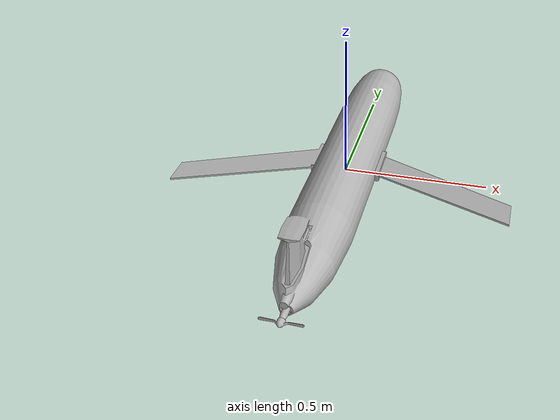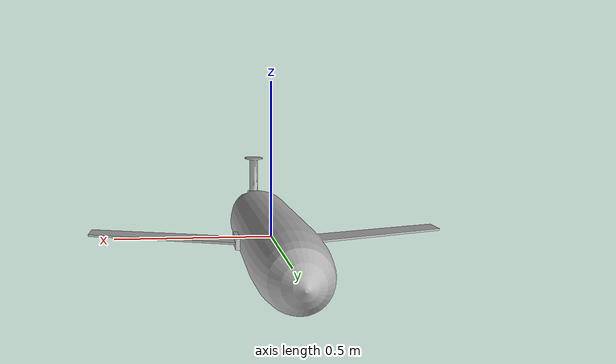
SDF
<?xml version="1.0"?>
<sdf version="1.7">
  <model name="glider_nautilus">

    <static>false</static>
    <link name="base_link">
      <inertial>
        <pose>0 0 -3 0 0 0</pose>
        <mass>69.25</mass>
        <inertia>
          <ixx>13.193856</ixx>
          <ixy>0</ixy>
          <ixz>0</ixz>
          <iyy>0.418962</iyy>
          <iyz>0</iyz>
          <izz>13.193856</izz>
        </inertia>
      </inertial>

      <visual name="base_link_visual">
        <pose>0 0 0 0 0 0</pose>
        <geometry>
          <mesh>
            <scale>0.5 0.5 0.5</scale>
            <uri>model://meshes/glider_nautilus/Nautilus-Glider.dae</uri>
          </mesh>
        </geometry>
      </visual>

      <collision name="base_link_collision">
        <pose>0 0 0 0 0 0</pose>
        <geometry>
          <box>
            <size>0.22 1.5 0.22</size>
          </box>
        </geometry>
      </collision>
    </link>

    <link name="propeller_link">
      <visual name="propeller_link_visual">
        <pose>0 0 0 0 0 0</pose>
        <geometry>
          <mesh>
            <scale>0.5 0.5 0.5</scale>
            <uri>model://meshes/glider_nautilus/Nautilus-Glider-Propeller.dae</uri>
          </mesh>
        </geometry>
      </visual>
      <inertial>
        <pose>0 0 0 0 0 0</pose>
        <inertia>
          <ixx>0.1</ixx>
          <ixy>0</ixy>
          <ixz>0</ixz>
          <iyy>0.1</iyy>
          <iyz>0</iyz>
          <izz>0.1</izz>
        </inertia>
        <mass>0.5</mass>
      </inertial>
    </link>

    <joint name="propeller_joint" type="revolute">
      <pose>0 0 0 0 0 0</pose>
      <parent>base_link</parent>
      <child>propeller_link</child>
      <axis>
        <xyz>0 1 0</xyz>
      </axis>
    </joint>

    <link name="LeftFin_link">
      <visual name="LeftFin_link_visual">
        <pose>0 0 0 0 0 0</pose>
        <geometry>
          <mesh>
            <scale>0.5 0.5 0.5</scale>
            <uri>model://meshes/glider_nautilus/Nautilus-Glider-LeftFin.dae</uri>
          </mesh>
        </geometry>
      </visual>

      <inertial>
        <pose>0 0 0 0 0 0</pose>
      </inertial>
    </link>

    <joint name="LeftFin_joint" type="revolute">
      <pose>0 0 0 0 0 0</pose>
      <parent>base_link</parent>
      <child>LeftFin_link</child>
      <axis>
        <xyz>1 0 0</xyz>
      </axis>
    </joint>

    <plugin
      filename="gz-sim-joint-position-controller-system"
      name="gz::sim::systems::JointPositionController">
      <joint_name>LeftFin_joint</joint_name>
      <p_gain>0.1</p_gain>
    </plugin>

    <plugin
      filename="gz-sim-lift-drag-system"
      name="gz::sim::systems::LiftDrag">
      <air_density>1025</air_density>
      <cla>4.13</cla>
      <cla_stall>-1.1</cla_stall>
      <cda>0.2</cda>
      <cda_stall>0.03</cda_stall>
      <alpha_stall>0.17</alpha_stall>
      <a0>0</a0>
      <area>0.0244</area>
      <upward>0 0 1</upward>
      <forward>1 0 0</forward>
      <link_name>LeftFin_link</link_name>
      <cp>0 0 0</cp>
    </plugin>

    <link name="RightFin_link">
      <visual name="RightFin_link_visual">
        <pose>0 0 0 0 0 0</pose>
        <geometry>
          <mesh>
            <scale>0.5 0.5 0.5</scale>
            <uri>model://meshes/glider_nautilus/Nautilus-Glider-RightFin.dae</uri>
          </mesh>
        </geometry>
      </visual>

      <inertial>
        <pose>0 0 0 0 0 0</pose>
      </inertial>
    </link>

    <joint name="RightFin_joint" type="revolute">
      <pose>0 0 0 0 0 0</pose>
      <parent>base_link</parent>
      <child>RightFin_link</child>
      <axis>
        <xyz>1 0 0</xyz>
      </axis>
    </joint>

    <plugin
      filename="gz-sim-joint-position-controller-system"
      name="gz::sim::systems::JointPositionController">
      <joint_name>RightFin_joint</joint_name>
      <p_gain>0.1</p_gain>
    </plugin>

    <plugin
      filename="gz-sim-lift-drag-system"
      name="gz::sim::systems::LiftDrag">
      <air_density>1025</air_density>
      <cla>4.13</cla>
      <cla_stall>-1.1</cla_stall>
      <cda>0.2</cda>
      <cda_stall>0.03</cda_stall>
      <alpha_stall>0.17</alpha_stall>
      <a0>0</a0>
      <area>0.0244</area>
      <upward>0 0 1</upward>
      <forward>1 0 0</forward>
      <link_name>RightFin_link</link_name>
      <cp>0 0 0</cp>
    </plugin>

    <link name="TopRudder_link">
      <visual name="TopRudder_link_visual">
        <pose>0 0 0 0 0 0</pose>
        <geometry>
          <mesh>
            <scale>0.5 0.5 0.5</scale>
            <uri>model://meshes/glider_nautilus/Nautilus-Glider-TopRudder.dae</uri>
          </mesh>
        </geometry>
      </visual>

      <inertial>
        <pose>0 0 0 0 0 0</pose>
      </inertial>
    </link>

    <joint name="TopRudder_joint" type="revolute">
      <pose>0 0 0 0 0 0</pose>
      <parent>base_link</parent>
      <child>TopRudder_link</child>
      <axis>
        <xyz>0 0 1</xyz>
      </axis>
    </joint>

    <plugin
      filename="gz-sim-joint-position-controller-system"
      name="gz::sim::systems::JointPositionController">
      <joint_name>TopRudder_joint</joint_name>
      <p_gain>0.1</p_gain>
    </plugin>

    <plugin
      filename="gz-sim-lift-drag-system"
      name="gz::sim::systems::LiftDrag">
      <air_density>1000</air_density>
      <cla>4.13</cla>
      <cla_stall>-1.1</cla_stall>
      <cda>0.2</cda>
      <cda_stall>0.03</cda_stall>
      <alpha_stall>0.17</alpha_stall>
      <a0>0</a0>
      <area>0.0244</area>
      <upward>0 1 0</upward>
      <forward>1 0 0</forward>
      <link_name>TopRudder_link</link_name>
      <cp>0 0 0</cp>
    </plugin>

    <link name="bladder_link">
      <inertial>
        <pose>0 0 0 0 0 0</pose>
      </inertial>
    </link>

    <joint name="bladder_joint" type="revolute">
      <pose>0 0 0 0 0 0</pose>
      <parent>base_link</parent>
      <child>bladder_link</child>
      <axis>
        <xyz>0 0 1</xyz>
      </axis>
    </joint>

    <plugin
      filename="gz-sim-thruster-system"
      name="gz::sim::systems::Thruster">
      <namespace>glider_nautilus</namespace>
      <joint_name>bladder_joint</joint_name>
      <thrust_coefficient>0.004422</thrust_coefficient>
      <fluid_density>1025</fluid_density>
      <propeller_diameter>0.2</propeller_diameter>
    </plugin>

    <link name="imu_link">
      <inertial>
        <pose>0 0 0 0 0 0</pose>
        <mass>0.015</mass>
        <inertia>
          <ixx>0.00001</ixx>
          <ixy>0.0</ixy>
          <ixz>0.0</ixz>
          <iyy>0.00001</iyy>
          <iyz>0.0</iyz>
          <izz>0.00001</izz>
        </inertia>
      </inertial>
      <sensor name="imu_sensor" type="imu">
        <always_on>true</always_on>
        <update_rate>50.0</update_rate>
        <topic>/model/glider_nautilus/imu</topic>
      </sensor>
    </link>

    <joint name="imu_joint" type="fixed">
      <pose>0 0 0 0 0 0</pose>
      <parent>base_link</parent>
      <child>imu_link</child>
    </joint>

    <link name='battery_link'>
      <inertial>
        <pose>0 0 0 0 0 0</pose>
        <mass>0.001</mass>
        <inertia>
          <ixx>1e-05</ixx>
          <ixy>0</ixy>
          <ixz>0</ixz>
          <iyy>1e-05</iyy>
          <iyz>0</iyz>
          <izz>1e-05</izz>
        </inertia>
      </inertial>
      <battery name='battery'>
        <voltage>4.2</voltage>
      </battery>
    </link>

    <joint name='battery_joint' type='fixed'>
      <pose>0 0 0 0 0 0</pose>
      <parent>base_link</parent>
      <child>battery_link</child>
    </joint>

    <plugin
      filename="gz-sim-linearbatteryplugin-system"
      name="gz::sim::systems::LinearBatteryPlugin">
      <battery_name>battery</battery_name>
      <voltage>4.2</voltage>
      <open_circuit_voltage_constant_coef>3.7</open_circuit_voltage_constant_coef>
      <open_circuit_voltage_linear_coef>-3.1424</open_circuit_voltage_linear_coef>
      <initial_charge>4.32</initial_charge>
      <capacity>4.8</capacity>
      <resistance>0.002</resistance>
      <smooth_current_tau>1.9499</smooth_current_tau>
      <enable_recharge>false</enable_recharge>
      <power_load>10</power_load>
      <start_on_motion>true</start_on_motion>
    </plugin>

    <link name="navsat_link">
      <inertial>
        <pose>0 0 0 0 0 0</pose>
        <mass>0.001</mass>
        <inertia>
          <ixx>0.00001</ixx>
          <ixy>0.0</ixy>
          <ixz>0.0</ixz>
          <iyy>0.00001</iyy>
          <iyz>0.0</iyz>
          <izz>0.00001</izz>
        </inertia>
      </inertial>

      <sensor name="navsat_sensor" type="navsat">
        <always_on>true</always_on>
        <update_rate>30.0</update_rate>
        <topic>/model/glider_nautilus/navsat</topic>
      </sensor>
    </link>

    <joint name="navsat_joint" type="fixed">
      <pose>0 0 0 0 0 0</pose>
      <parent>base_link</parent>
      <child>navsat_link</child>
    </joint>

    <plugin
      filename="gz-sim-hydrodynamics-system"
      name="gz::sim::systems::Hydrodynamics">
      <link_name>base_link</link_name>
      <water_density>1025.0</water_density>
      <!-- Added mass -->
      <xDotU>0</xDotU>
      <yDotV>0</yDotV>
      <zDotW>0</zDotW>
      <kDotP>0</kDotP>
      <mDotQ>0</mDotQ>
      <nDotR>0</nDotR>

      <!-- Linear Drag Coefficients -->
      <!-- diagonal terms -->
      <xU>-8</xU>
      <yV>-162</yV>
      <zW>-108</zW>
      <kP>-13</kP>
      <mQ>-20</mQ>
      <nR>-32</nR>
      <!-- cross terms -->

      <!-- Quadratic Drag Coefficients -->
      <xUabsU>0</xUabsU>
      <yVabsV>0</yVabsV>
      <zWabsW>0</zWabsW>
      <kPabsP>0</kPabsP>
      <mQabsQ>0</mQabsQ>
      <nRabsR>0</nRabsR>
    </plugin>

    <plugin
      filename="gz-sim-imu-system"
      name="gz::sim::systems::Imu">
    </plugin>

    <plugin
      filename="gz-sim-navsat-system"
      name="gz::sim::systems::NavSat">
    </plugin>

    <plugin
      filename="gz-sim-odometry-publisher-system"
      name="gz::sim::systems::OdometryPublisher">
      <odom_frame>map</odom_frame>
      <robot_base_frame>base_link</robot_base_frame>
      <dimensions>3</dimensions>
      <odom_publish_frequency>100</odom_publish_frequency>
    </plugin>

    <plugin
      filename="gz-sim-joint-state-publisher-system"
      name="gz::sim::systems::JointStatePublisher">
    </plugin>

    <!-- Sea Pressure Sensor Plugin -->
    <plugin
      filename="sea_pressure_sensor"
      name=" dave_gz_sensor_plugins::SubseaPressureSensorPlugin">
      <namespace>glider_nautilus</namespace>
      <topic>sea_pressure</topic>
      <update_rate>10</update_rate>
      <noise_sigma>3.0</noise_sigma>
      <estimate_depth_on>true</estimate_depth_on>
      <standard_pressure>101.325</standard_pressure>
      <kPa_per_meter>9.80638</kPa_per_meter>
    </plugin>

  </model>
</sdf>
